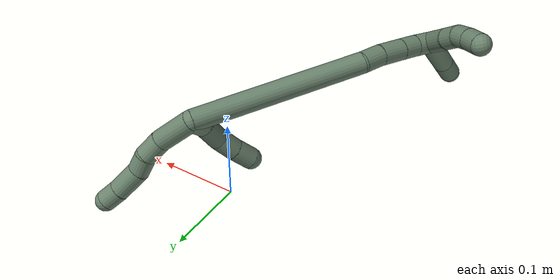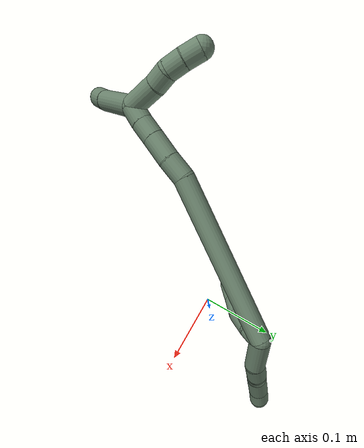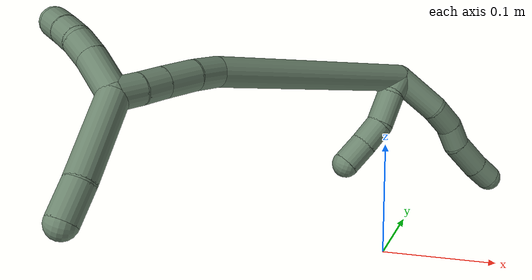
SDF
<sdf version="1.7">
 <world name="default">
  <model name="17">
   <static>0</static>
   <link name="17">
    <collision name="collision-cylinder-e_1_2_8">
     <pose>-0.008554 0.001187 -0.02164 -3.08679 -0.375912 2.85535</pose>
     <geometry><cylinder><radius>0.0125</radius><length>0.046599</length></cylinder></geometry>
     <surface>
      <friction><ode><mu>1.16</mu><mu2>1.16</mu2><slip1>0</slip1><slip2>0</slip2></ode></friction>
      <contact><ode><kp>1e+06</kp><kd>1</kd><max_vel>0</max_vel><min_depth>0.001</min_depth></ode></contact>
     </surface>
    </collision>
    <visual name="visual-cylinder-e_1_2_8">
     <pose>-0.008554 0.001187 -0.02164 -3.08679 -0.375912 2.85535</pose>
     <geometry><cylinder><radius>0.0125</radius><length>0.046599</length></cylinder></geometry>
     <material><ambient>0.415686 0.509804 0.423529 1</ambient></material>
    </visual>
    <collision name="collision-cylinder-e_2_8_9">
     <pose>-0.023001 0.005935 -0.054169 -2.82557 -0.475154 1.97759</pose>
     <geometry><cylinder><radius>0.0125</radius><length>0.025767</length></cylinder></geometry>
     <surface>
      <friction><ode><mu>1.16</mu><mu2>1.16</mu2><slip1>0</slip1><slip2>0</slip2></ode></friction>
      <contact><ode><kp>1e+06</kp><kd>1</kd><max_vel>0</max_vel><min_depth>0.001</min_depth></ode></contact>
     </surface>
    </collision>
    <visual name="visual-cylinder-e_2_8_9">
     <pose>-0.023001 0.005935 -0.054169 -2.82557 -0.475154 1.97759</pose>
     <geometry><cylinder><radius>0.0125</radius><length>0.025767</length></cylinder></geometry>
     <material><ambient>0.415686 0.509804 0.423529 1</ambient></material>
    </visual>
    <collision name="collision-cylinder-e_3_9_10">
     <pose>-0.036669 0.011618 -0.072548 -2.86543 -0.78463 2.49354</pose>
     <geometry><cylinder><radius>0.0125</radius><length>0.022003</length></cylinder></geometry>
     <surface>
      <friction><ode><mu>1.16</mu><mu2>1.16</mu2><slip1>0</slip1><slip2>0</slip2></ode></friction>
      <contact><ode><kp>1e+06</kp><kd>1</kd><max_vel>0</max_vel><min_depth>0.001</min_depth></ode></contact>
     </surface>
    </collision>
    <visual name="visual-cylinder-e_3_9_10">
     <pose>-0.036669 0.011618 -0.072548 -2.86543 -0.78463 2.49354</pose>
     <geometry><cylinder><radius>0.0125</radius><length>0.022003</length></cylinder></geometry>
     <material><ambient>0.415686 0.509804 0.423529 1</ambient></material>
    </visual>
    <collision name="collision-cylinder-e_4_10_11">
     <pose>-0.052194 0.01821 -0.094663 -2.84504 -0.469169 2.02434</pose>
     <geometry><cylinder><radius>0.0125</radius><length>0.03429</length></cylinder></geometry>
     <surface>
      <friction><ode><mu>1.16</mu><mu2>1.16</mu2><slip1>0</slip1><slip2>0</slip2></ode></friction>
      <contact><ode><kp>1e+06</kp><kd>1</kd><max_vel>0</max_vel><min_depth>0.001</min_depth></ode></contact>
     </surface>
    </collision>
    <visual name="visual-cylinder-e_4_10_11">
     <pose>-0.052194 0.01821 -0.094663 -2.84504 -0.469169 2.02434</pose>
     <geometry><cylinder><radius>0.0125</radius><length>0.03429</length></cylinder></geometry>
     <material><ambient>0.415686 0.509804 0.423529 1</ambient></material>
    </visual>
    <collision name="collision-cylinder-e_5_11_6">
     <pose>-0.063901 0.025196 -0.118874 -2.88475 -0.379714 1.95827</pose>
     <geometry><cylinder><radius>0.0125</radius><length>0.021341</length></cylinder></geometry>
     <surface>
      <friction><ode><mu>1.16</mu><mu2>1.16</mu2><slip1>0</slip1><slip2>0</slip2></ode></friction>
      <contact><ode><kp>1e+06</kp><kd>1</kd><max_vel>0</max_vel><min_depth>0.001</min_depth></ode></contact>
     </surface>
    </collision>
    <visual name="visual-cylinder-e_5_11_6">
     <pose>-0.063901 0.025196 -0.118874 -2.88475 -0.379714 1.95827</pose>
     <geometry><cylinder><radius>0.0125</radius><length>0.021341</length></cylinder></geometry>
     <material><ambient>0.415686 0.509804 0.423529 1</ambient></material>
    </visual>
    <collision name="collision-cylinder-e_1_2_12">
     <pose>-0.008466 -0.005556 0.002483 1.15055 -0.947499 -0.641907</pose>
     <geometry><cylinder><radius>0.0125</radius><length>0.020853</length></cylinder></geometry>
     <surface>
      <friction><ode><mu>1.16</mu><mu2>1.16</mu2><slip1>0</slip1><slip2>0</slip2></ode></friction>
      <contact><ode><kp>1e+06</kp><kd>1</kd><max_vel>0</max_vel><min_depth>0.001</min_depth></ode></contact>
     </surface>
    </collision>
    <visual name="visual-cylinder-e_1_2_12">
     <pose>-0.008466 -0.005556 0.002483 1.15055 -0.947499 -0.641907</pose>
     <geometry><cylinder><radius>0.0125</radius><length>0.020853</length></cylinder></geometry>
     <material><ambient>0.415686 0.509804 0.423529 1</ambient></material>
    </visual>
    <collision name="collision-cylinder-e_2_12_13">
     <pose>-0.031204 -0.016121 0.006662 1.24423 -1.21603 -0.925828</pose>
     <geometry><cylinder><radius>0.0125</radius><length>0.030441</length></cylinder></geometry>
     <surface>
      <friction><ode><mu>1.16</mu><mu2>1.16</mu2><slip1>0</slip1><slip2>0</slip2></ode></friction>
      <contact><ode><kp>1e+06</kp><kd>1</kd><max_vel>0</max_vel><min_depth>0.001</min_depth></ode></contact>
     </surface>
    </collision>
    <visual name="visual-cylinder-e_2_12_13">
     <pose>-0.031204 -0.016121 0.006662 1.24423 -1.21603 -0.925828</pose>
     <geometry><cylinder><radius>0.0125</radius><length>0.030441</length></cylinder></geometry>
     <material><ambient>0.415686 0.509804 0.423529 1</ambient></material>
    </visual>
    <collision name="collision-cylinder-e_3_13_14">
     <pose>-0.056147 -0.023427 0.013058 0.454907 -1.11488 -0.286599</pose>
     <geometry><cylinder><radius>0.0125</radius><length>0.023767</length></cylinder></geometry>
     <surface>
      <friction><ode><mu>1.16</mu><mu2>1.16</mu2><slip1>0</slip1><slip2>0</slip2></ode></friction>
      <contact><ode><kp>1e+06</kp><kd>1</kd><max_vel>0</max_vel><min_depth>0.001</min_depth></ode></contact>
     </surface>
    </collision>
    <visual name="visual-cylinder-e_3_13_14">
     <pose>-0.056147 -0.023427 0.013058 0.454907 -1.11488 -0.286599</pose>
     <geometry><cylinder><radius>0.0125</radius><length>0.023767</length></cylinder></geometry>
     <material><ambient>0.415686 0.509804 0.423529 1</ambient></material>
    </visual>
    <collision name="collision-cylinder-e_4_14_5">
     <pose>-0.077564 -0.028749 0.023312 0.498454 -1.03901 -0.289092</pose>
     <geometry><cylinder><radius>0.0125</radius><length>0.02494</length></cylinder></geometry>
     <surface>
      <friction><ode><mu>1.16</mu><mu2>1.16</mu2><slip1>0</slip1><slip2>0</slip2></ode></friction>
      <contact><ode><kp>1e+06</kp><kd>1</kd><max_vel>0</max_vel><min_depth>0.001</min_depth></ode></contact>
     </surface>
    </collision>
    <visual name="visual-cylinder-e_4_14_5">
     <pose>-0.077564 -0.028749 0.023312 0.498454 -1.03901 -0.289092</pose>
     <geometry><cylinder><radius>0.0125</radius><length>0.02494</length></cylinder></geometry>
     <material><ambient>0.415686 0.509804 0.423529 1</ambient></material>
    </visual>
    <collision name="collision-cylinder-e_1_2_15">
     <pose>-0.018495 -0.052176 0.084193 0.554794 -0.184595 -0.052699</pose>
     <geometry><cylinder><radius>0.0125</radius><length>0.201524</length></cylinder></geometry>
     <surface>
      <friction><ode><mu>1.16</mu><mu2>1.16</mu2><slip1>0</slip1><slip2>0</slip2></ode></friction>
      <contact><ode><kp>1e+06</kp><kd>1</kd><max_vel>0</max_vel><min_depth>0.001</min_depth></ode></contact>
     </surface>
    </collision>
    <visual name="visual-cylinder-e_1_2_15">
     <pose>-0.018495 -0.052176 0.084193 0.554794 -0.184595 -0.052699</pose>
     <geometry><cylinder><radius>0.0125</radius><length>0.201524</length></cylinder></geometry>
     <material><ambient>0.415686 0.509804 0.423529 1</ambient></material>
    </visual>
    <collision name="collision-cylinder-e_2_15_16">
     <pose>-0.040258 -0.113407 0.176983 0.811345 -0.256066 -0.110472</pose>
     <geometry><cylinder><radius>0.0125</radius><length>0.025811</length></cylinder></geometry>
     <surface>
      <friction><ode><mu>1.16</mu><mu2>1.16</mu2><slip1>0</slip1><slip2>0</slip2></ode></friction>
      <contact><ode><kp>1e+06</kp><kd>1</kd><max_vel>0</max_vel><min_depth>0.001</min_depth></ode></contact>
     </surface>
    </collision>
    <visual name="visual-cylinder-e_2_15_16">
     <pose>-0.040258 -0.113407 0.176983 0.811345 -0.256066 -0.110472</pose>
     <geometry><cylinder><radius>0.0125</radius><length>0.025811</length></cylinder></geometry>
     <material><ambient>0.415686 0.509804 0.423529 1</ambient></material>
    </visual>
    <collision name="collision-cylinder-e_3_16_17">
     <pose>-0.048665 -0.132164 0.195797 0.759533 -0.349663 -0.140772</pose>
     <geometry><cylinder><radius>0.0125</radius><length>0.029998</length></cylinder></geometry>
     <surface>
      <friction><ode><mu>1.16</mu><mu2>1.16</mu2><slip1>0</slip1><slip2>0</slip2></ode></friction>
      <contact><ode><kp>1e+06</kp><kd>1</kd><max_vel>0</max_vel><min_depth>0.001</min_depth></ode></contact>
     </surface>
    </collision>
    <visual name="visual-cylinder-e_3_16_17">
     <pose>-0.048665 -0.132164 0.195797 0.759533 -0.349663 -0.140772</pose>
     <geometry><cylinder><radius>0.0125</radius><length>0.029998</length></cylinder></geometry>
     <material><ambient>0.415686 0.509804 0.423529 1</ambient></material>
    </visual>
    <collision name="collision-cylinder-e_4_17_18">
     <pose>-0.057608 -0.148835 0.213089 0.777891 -0.365922 -0.151369</pose>
     <geometry><cylinder><radius>0.0125</radius><length>0.021266</length></cylinder></geometry>
     <surface>
      <friction><ode><mu>1.16</mu><mu2>1.16</mu2><slip1>0</slip1><slip2>0</slip2></ode></friction>
      <contact><ode><kp>1e+06</kp><kd>1</kd><max_vel>0</max_vel><min_depth>0.001</min_depth></ode></contact>
     </surface>
    </collision>
    <visual name="visual-cylinder-e_4_17_18">
     <pose>-0.057608 -0.148835 0.213089 0.777891 -0.365922 -0.151369</pose>
     <geometry><cylinder><radius>0.0125</radius><length>0.021266</length></cylinder></geometry>
     <material><ambient>0.415686 0.509804 0.423529 1</ambient></material>
    </visual>
    <collision name="collision-cylinder-e_5_18_1">
     <pose>-0.065241 -0.162107 0.227915 0.68274 -0.365909 -0.131281</pose>
     <geometry><cylinder><radius>0.0125</radius><length>0.021402</length></cylinder></geometry>
     <surface>
      <friction><ode><mu>1.16</mu><mu2>1.16</mu2><slip1>0</slip1><slip2>0</slip2></ode></friction>
      <contact><ode><kp>1e+06</kp><kd>1</kd><max_vel>0</max_vel><min_depth>0.001</min_depth></ode></contact>
     </surface>
    </collision>
    <visual name="visual-cylinder-e_5_18_1">
     <pose>-0.065241 -0.162107 0.227915 0.68274 -0.365909 -0.131281</pose>
     <geometry><cylinder><radius>0.0125</radius><length>0.021402</length></cylinder></geometry>
     <material><ambient>0.415686 0.509804 0.423529 1</ambient></material>
    </visual>
    <collision name="collision-cylinder-e_1_1_19">
     <pose>-0.097897 -0.188096 0.236959 1.50526 -0.970676 -0.917571</pose>
     <geometry><cylinder><radius>0.0125</radius><length>0.069862</length></cylinder></geometry>
     <surface>
      <friction><ode><mu>1.16</mu><mu2>1.16</mu2><slip1>0</slip1><slip2>0</slip2></ode></friction>
      <contact><ode><kp>1e+06</kp><kd>1</kd><max_vel>0</max_vel><min_depth>0.001</min_depth></ode></contact>
     </surface>
    </collision>
    <visual name="visual-cylinder-e_1_1_19">
     <pose>-0.097897 -0.188096 0.236959 1.50526 -0.970676 -0.917571</pose>
     <geometry><cylinder><radius>0.0125</radius><length>0.069862</length></cylinder></geometry>
     <material><ambient>0.415686 0.509804 0.423529 1</ambient></material>
    </visual>
    <collision name="collision-cylinder-e_2_19_4">
     <pose>-0.14005 -0.214685 0.239605 1.37709 -1.08501 -0.921004</pose>
     <geometry><cylinder><radius>0.0125</radius><length>0.030138</length></cylinder></geometry>
     <surface>
      <friction><ode><mu>1.16</mu><mu2>1.16</mu2><slip1>0</slip1><slip2>0</slip2></ode></friction>
      <contact><ode><kp>1e+06</kp><kd>1</kd><max_vel>0</max_vel><min_depth>0.001</min_depth></ode></contact>
     </surface>
    </collision>
    <visual name="visual-cylinder-e_2_19_4">
     <pose>-0.14005 -0.214685 0.239605 1.37709 -1.08501 -0.921004</pose>
     <geometry><cylinder><radius>0.0125</radius><length>0.030138</length></cylinder></geometry>
     <material><ambient>0.415686 0.509804 0.423529 1</ambient></material>
    </visual>
    <collision name="collision-cylinder-e_1_1_20">
     <pose>-0.060569 -0.155634 0.247786 -0.81189 0.44974 -0.196003</pose>
     <geometry><cylinder><radius>0.0125</radius><length>0.03911</length></cylinder></geometry>
     <surface>
      <friction><ode><mu>1.16</mu><mu2>1.16</mu2><slip1>0</slip1><slip2>0</slip2></ode></friction>
      <contact><ode><kp>1e+06</kp><kd>1</kd><max_vel>0</max_vel><min_depth>0.001</min_depth></ode></contact>
     </surface>
    </collision>
    <visual name="visual-cylinder-e_1_1_20">
     <pose>-0.060569 -0.155634 0.247786 -0.81189 0.44974 -0.196003</pose>
     <geometry><cylinder><radius>0.0125</radius><length>0.03911</length></cylinder></geometry>
     <material><ambient>0.415686 0.509804 0.423529 1</ambient></material>
    </visual>
    <collision name="collision-cylinder-e_2_20_21">
     <pose>-0.048034 -0.13718 0.267098 -0.667975 0.414707 -0.145738</pose>
     <geometry><cylinder><radius>0.0125</radius><length>0.020024</length></cylinder></geometry>
     <surface>
      <friction><ode><mu>1.16</mu><mu2>1.16</mu2><slip1>0</slip1><slip2>0</slip2></ode></friction>
      <contact><ode><kp>1e+06</kp><kd>1</kd><max_vel>0</max_vel><min_depth>0.001</min_depth></ode></contact>
     </surface>
    </collision>
    <visual name="visual-cylinder-e_2_20_21">
     <pose>-0.048034 -0.13718 0.267098 -0.667975 0.414707 -0.145738</pose>
     <geometry><cylinder><radius>0.0125</radius><length>0.020024</length></cylinder></geometry>
     <material><ambient>0.415686 0.509804 0.423529 1</ambient></material>
    </visual>
    <collision name="collision-cylinder-e_3_21_22">
     <pose>-0.042411 -0.123711 0.280457 -0.901469 0.158492 -0.076827</pose>
     <geometry><cylinder><radius>0.0125</radius><length>0.020127</length></cylinder></geometry>
     <surface>
      <friction><ode><mu>1.16</mu><mu2>1.16</mu2><slip1>0</slip1><slip2>0</slip2></ode></friction>
      <contact><ode><kp>1e+06</kp><kd>1</kd><max_vel>0</max_vel><min_depth>0.001</min_depth></ode></contact>
     </surface>
    </collision>
    <visual name="visual-cylinder-e_3_21_22">
     <pose>-0.042411 -0.123711 0.280457 -0.901469 0.158492 -0.076827</pose>
     <geometry><cylinder><radius>0.0125</radius><length>0.020127</length></cylinder></geometry>
     <material><ambient>0.415686 0.509804 0.423529 1</ambient></material>
    </visual>
    <collision name="collision-cylinder-e_4_22_3">
     <pose>-0.039841 -0.107411 0.29247 -0.968623 0.094805 -0.049904</pose>
     <geometry><cylinder><radius>0.0125</radius><length>0.020739</length></cylinder></geometry>
     <surface>
      <friction><ode><mu>1.16</mu><mu2>1.16</mu2><slip1>0</slip1><slip2>0</slip2></ode></friction>
      <contact><ode><kp>1e+06</kp><kd>1</kd><max_vel>0</max_vel><min_depth>0.001</min_depth></ode></contact>
     </surface>
    </collision>
    <visual name="visual-cylinder-e_4_22_3">
     <pose>-0.039841 -0.107411 0.29247 -0.968623 0.094805 -0.049904</pose>
     <geometry><cylinder><radius>0.0125</radius><length>0.020739</length></cylinder></geometry>
     <material><ambient>0.415686 0.509804 0.423529 1</ambient></material>
    </visual>
    <collision name="collision-sphere-3">
     <pose>-0.03886 -0.098903 0.298318 0 -0 0</pose>
     <geometry><sphere><radius>0.0125</radius></sphere></geometry>
     <surface>
      <friction><ode><mu>1.16</mu><mu2>1.16</mu2><slip1>0</slip1><slip2>0</slip2></ode></friction>
      <contact><ode><kp>1e+06</kp><kd>1</kd><max_vel>0</max_vel><min_depth>0.001</min_depth></ode></contact>
     </surface>
    </collision>
    <visual name="visual-sphere-3">
     <pose>-0.03886 -0.098903 0.298318 0 -0 0</pose>
     <geometry><sphere><radius>0.0125</radius></sphere></geometry>
     <material><ambient>0.415686 0.509804 0.423529 1</ambient></material>
    </visual>
    <collision name="collision-sphere-22">
     <pose>-0.040823 -0.115918 0.286623 0 -0 0</pose>
     <geometry><sphere><radius>0.0125</radius></sphere></geometry>
     <surface>
      <friction><ode><mu>1.16</mu><mu2>1.16</mu2><slip1>0</slip1><slip2>0</slip2></ode></friction>
      <contact><ode><kp>1e+06</kp><kd>1</kd><max_vel>0</max_vel><min_depth>0.001</min_depth></ode></contact>
     </surface>
    </collision>
    <visual name="visual-sphere-22">
     <pose>-0.040823 -0.115918 0.286623 0 -0 0</pose>
     <geometry><sphere><radius>0.0125</radius></sphere></geometry>
     <material><ambient>0.415686 0.509804 0.423529 1</ambient></material>
    </visual>
    <collision name="collision-sphere-21">
     <pose>-0.044 -0.131504 0.274292 0 -0 0</pose>
     <geometry><sphere><radius>0.0125</radius></sphere></geometry>
     <surface>
      <friction><ode><mu>1.16</mu><mu2>1.16</mu2><slip1>0</slip1><slip2>0</slip2></ode></friction>
      <contact><ode><kp>1e+06</kp><kd>1</kd><max_vel>0</max_vel><min_depth>0.001</min_depth></ode></contact>
     </surface>
    </collision>
    <visual name="visual-sphere-21">
     <pose>-0.044 -0.131504 0.274292 0 -0 0</pose>
     <geometry><sphere><radius>0.0125</radius></sphere></geometry>
     <material><ambient>0.415686 0.509804 0.423529 1</ambient></material>
    </visual>
    <collision name="collision-sphere-20">
     <pose>-0.052068 -0.142856 0.259904 0 -0 0</pose>
     <geometry><sphere><radius>0.0125</radius></sphere></geometry>
     <surface>
      <friction><ode><mu>1.16</mu><mu2>1.16</mu2><slip1>0</slip1><slip2>0</slip2></ode></friction>
      <contact><ode><kp>1e+06</kp><kd>1</kd><max_vel>0</max_vel><min_depth>0.001</min_depth></ode></contact>
     </surface>
    </collision>
    <visual name="visual-sphere-20">
     <pose>-0.052068 -0.142856 0.259904 0 -0 0</pose>
     <geometry><sphere><radius>0.0125</radius></sphere></geometry>
     <material><ambient>0.415686 0.509804 0.423529 1</ambient></material>
    </visual>
    <collision name="collision-sphere-4">
     <pose>-0.153376 -0.221589 0.24096 0 -0 0</pose>
     <geometry><sphere><radius>0.0125</radius></sphere></geometry>
     <surface>
      <friction><ode><mu>1.16</mu><mu2>1.16</mu2><slip1>0</slip1><slip2>0</slip2></ode></friction>
      <contact><ode><kp>1e+06</kp><kd>1</kd><max_vel>0</max_vel><min_depth>0.001</min_depth></ode></contact>
     </surface>
    </collision>
    <visual name="visual-sphere-4">
     <pose>-0.153376 -0.221589 0.24096 0 -0 0</pose>
     <geometry><sphere><radius>0.0125</radius></sphere></geometry>
     <material><ambient>0.415686 0.509804 0.423529 1</ambient></material>
    </visual>
    <collision name="collision-sphere-6">
     <pose>-0.067856 0.027714 -0.128459 0 -0 0</pose>
     <geometry><sphere><radius>0.0125</radius></sphere></geometry>
     <surface>
      <friction><ode><mu>1.16</mu><mu2>1.16</mu2><slip1>0</slip1><slip2>0</slip2></ode></friction>
      <contact><ode><kp>1e+06</kp><kd>1</kd><max_vel>0</max_vel><min_depth>0.001</min_depth></ode></contact>
     </surface>
    </collision>
    <visual name="visual-sphere-6">
     <pose>-0.067856 0.027714 -0.128459 0 -0 0</pose>
     <geometry><sphere><radius>0.0125</radius></sphere></geometry>
     <material><ambient>0.415686 0.509804 0.423529 1</ambient></material>
    </visual>
    <collision name="collision-sphere-11">
     <pose>-0.059946 0.022679 -0.109288 0 -0 0</pose>
     <geometry><sphere><radius>0.0125</radius></sphere></geometry>
     <surface>
      <friction><ode><mu>1.16</mu><mu2>1.16</mu2><slip1>0</slip1><slip2>0</slip2></ode></friction>
      <contact><ode><kp>1e+06</kp><kd>1</kd><max_vel>0</max_vel><min_depth>0.001</min_depth></ode></contact>
     </surface>
    </collision>
    <visual name="visual-sphere-11">
     <pose>-0.059946 0.022679 -0.109288 0 -0 0</pose>
     <geometry><sphere><radius>0.0125</radius></sphere></geometry>
     <material><ambient>0.415686 0.509804 0.423529 1</ambient></material>
    </visual>
    <collision name="collision-sphere-10">
     <pose>-0.044442 0.013741 -0.080038 0 -0 0</pose>
     <geometry><sphere><radius>0.0125</radius></sphere></geometry>
     <surface>
      <friction><ode><mu>1.16</mu><mu2>1.16</mu2><slip1>0</slip1><slip2>0</slip2></ode></friction>
      <contact><ode><kp>1e+06</kp><kd>1</kd><max_vel>0</max_vel><min_depth>0.001</min_depth></ode></contact>
     </surface>
    </collision>
    <visual name="visual-sphere-10">
     <pose>-0.044442 0.013741 -0.080038 0 -0 0</pose>
     <geometry><sphere><radius>0.0125</radius></sphere></geometry>
     <material><ambient>0.415686 0.509804 0.423529 1</ambient></material>
    </visual>
    <collision name="collision-sphere-9">
     <pose>-0.028895 0.009496 -0.065058 0 -0 0</pose>
     <geometry><sphere><radius>0.0125</radius></sphere></geometry>
     <surface>
      <friction><ode><mu>1.16</mu><mu2>1.16</mu2><slip1>0</slip1><slip2>0</slip2></ode></friction>
      <contact><ode><kp>1e+06</kp><kd>1</kd><max_vel>0</max_vel><min_depth>0.001</min_depth></ode></contact>
     </surface>
    </collision>
    <visual name="visual-sphere-9">
     <pose>-0.028895 0.009496 -0.065058 0 -0 0</pose>
     <geometry><sphere><radius>0.0125</radius></sphere></geometry>
     <material><ambient>0.415686 0.509804 0.423529 1</ambient></material>
    </visual>
    <collision name="collision-sphere-2">
     <geometry><sphere><radius>0.0125</radius></sphere></geometry>
     <surface>
      <friction><ode><mu>1.16</mu><mu2>1.16</mu2><slip1>0</slip1><slip2>0</slip2></ode></friction>
      <contact><ode><kp>1e+06</kp><kd>1</kd><max_vel>0</max_vel><min_depth>0.001</min_depth></ode></contact>
     </surface>
    </collision>
    <visual name="visual-sphere-2">
     <geometry><sphere><radius>0.0125</radius></sphere></geometry>
     <material><ambient>0.415686 0.509804 0.423529 1</ambient></material>
    </visual>
    <collision name="collision-sphere-19">
     <pose>-0.126725 -0.207781 0.238251 0 -0 0</pose>
     <geometry><sphere><radius>0.0125</radius></sphere></geometry>
     <surface>
      <friction><ode><mu>1.16</mu><mu2>1.16</mu2><slip1>0</slip1><slip2>0</slip2></ode></friction>
      <contact><ode><kp>1e+06</kp><kd>1</kd><max_vel>0</max_vel><min_depth>0.001</min_depth></ode></contact>
     </surface>
    </collision>
    <visual name="visual-sphere-19">
     <pose>-0.126725 -0.207781 0.238251 0 -0 0</pose>
     <geometry><sphere><radius>0.0125</radius></sphere></geometry>
     <material><ambient>0.415686 0.509804 0.423529 1</ambient></material>
    </visual>
    <collision name="collision-sphere-8">
     <pose>-0.017107 0.002374 -0.04328 0 -0 0</pose>
     <geometry><sphere><radius>0.0125</radius></sphere></geometry>
     <surface>
      <friction><ode><mu>1.16</mu><mu2>1.16</mu2><slip1>0</slip1><slip2>0</slip2></ode></friction>
      <contact><ode><kp>1e+06</kp><kd>1</kd><max_vel>0</max_vel><min_depth>0.001</min_depth></ode></contact>
     </surface>
    </collision>
    <visual name="visual-sphere-8">
     <pose>-0.017107 0.002374 -0.04328 0 -0 0</pose>
     <geometry><sphere><radius>0.0125</radius></sphere></geometry>
     <material><ambient>0.415686 0.509804 0.423529 1</ambient></material>
    </visual>
    <collision name="collision-sphere-12">
     <pose>-0.016932 -0.011113 0.004966 0 -0 0</pose>
     <geometry><sphere><radius>0.0125</radius></sphere></geometry>
     <surface>
      <friction><ode><mu>1.16</mu><mu2>1.16</mu2><slip1>0</slip1><slip2>0</slip2></ode></friction>
      <contact><ode><kp>1e+06</kp><kd>1</kd><max_vel>0</max_vel><min_depth>0.001</min_depth></ode></contact>
     </surface>
    </collision>
    <visual name="visual-sphere-12">
     <pose>-0.016932 -0.011113 0.004966 0 -0 0</pose>
     <geometry><sphere><radius>0.0125</radius></sphere></geometry>
     <material><ambient>0.415686 0.509804 0.423529 1</ambient></material>
    </visual>
    <collision name="collision-sphere-13">
     <pose>-0.045477 -0.021128 0.008358 0 -0 0</pose>
     <geometry><sphere><radius>0.0125</radius></sphere></geometry>
     <surface>
      <friction><ode><mu>1.16</mu><mu2>1.16</mu2><slip1>0</slip1><slip2>0</slip2></ode></friction>
      <contact><ode><kp>1e+06</kp><kd>1</kd><max_vel>0</max_vel><min_depth>0.001</min_depth></ode></contact>
     </surface>
    </collision>
    <visual name="visual-sphere-13">
     <pose>-0.045477 -0.021128 0.008358 0 -0 0</pose>
     <geometry><sphere><radius>0.0125</radius></sphere></geometry>
     <material><ambient>0.415686 0.509804 0.423529 1</ambient></material>
    </visual>
    <collision name="collision-sphere-14">
     <pose>-0.066816 -0.025726 0.017758 0 -0 0</pose>
     <geometry><sphere><radius>0.0125</radius></sphere></geometry>
     <surface>
      <friction><ode><mu>1.16</mu><mu2>1.16</mu2><slip1>0</slip1><slip2>0</slip2></ode></friction>
      <contact><ode><kp>1e+06</kp><kd>1</kd><max_vel>0</max_vel><min_depth>0.001</min_depth></ode></contact>
     </surface>
    </collision>
    <visual name="visual-sphere-14">
     <pose>-0.066816 -0.025726 0.017758 0 -0 0</pose>
     <geometry><sphere><radius>0.0125</radius></sphere></geometry>
     <material><ambient>0.415686 0.509804 0.423529 1</ambient></material>
    </visual>
    <collision name="collision-sphere-5">
     <pose>-0.088312 -0.031772 0.028866 0 -0 0</pose>
     <geometry><sphere><radius>0.0125</radius></sphere></geometry>
     <surface>
      <friction><ode><mu>1.16</mu><mu2>1.16</mu2><slip1>0</slip1><slip2>0</slip2></ode></friction>
      <contact><ode><kp>1e+06</kp><kd>1</kd><max_vel>0</max_vel><min_depth>0.001</min_depth></ode></contact>
     </surface>
    </collision>
    <visual name="visual-sphere-5">
     <pose>-0.088312 -0.031772 0.028866 0 -0 0</pose>
     <geometry><sphere><radius>0.0125</radius></sphere></geometry>
     <material><ambient>0.415686 0.509804 0.423529 1</ambient></material>
    </visual>
    <collision name="collision-sphere-15">
     <pose>-0.036989 -0.104353 0.168387 0 -0 0</pose>
     <geometry><sphere><radius>0.0125</radius></sphere></geometry>
     <surface>
      <friction><ode><mu>1.16</mu><mu2>1.16</mu2><slip1>0</slip1><slip2>0</slip2></ode></friction>
      <contact><ode><kp>1e+06</kp><kd>1</kd><max_vel>0</max_vel><min_depth>0.001</min_depth></ode></contact>
     </surface>
    </collision>
    <visual name="visual-sphere-15">
     <pose>-0.036989 -0.104353 0.168387 0 -0 0</pose>
     <geometry><sphere><radius>0.0125</radius></sphere></geometry>
     <material><ambient>0.415686 0.509804 0.423529 1</ambient></material>
    </visual>
    <collision name="collision-sphere-16">
     <pose>-0.043527 -0.122461 0.185579 0 -0 0</pose>
     <geometry><sphere><radius>0.0125</radius></sphere></geometry>
     <surface>
      <friction><ode><mu>1.16</mu><mu2>1.16</mu2><slip1>0</slip1><slip2>0</slip2></ode></friction>
      <contact><ode><kp>1e+06</kp><kd>1</kd><max_vel>0</max_vel><min_depth>0.001</min_depth></ode></contact>
     </surface>
    </collision>
    <visual name="visual-sphere-16">
     <pose>-0.043527 -0.122461 0.185579 0 -0 0</pose>
     <geometry><sphere><radius>0.0125</radius></sphere></geometry>
     <material><ambient>0.415686 0.509804 0.423529 1</ambient></material>
    </visual>
    <collision name="collision-sphere-17">
     <pose>-0.053803 -0.141867 0.206016 0 -0 0</pose>
     <geometry><sphere><radius>0.0125</radius></sphere></geometry>
     <surface>
      <friction><ode><mu>1.16</mu><mu2>1.16</mu2><slip1>0</slip1><slip2>0</slip2></ode></friction>
      <contact><ode><kp>1e+06</kp><kd>1</kd><max_vel>0</max_vel><min_depth>0.001</min_depth></ode></contact>
     </surface>
    </collision>
    <visual name="visual-sphere-17">
     <pose>-0.053803 -0.141867 0.206016 0 -0 0</pose>
     <geometry><sphere><radius>0.0125</radius></sphere></geometry>
     <material><ambient>0.415686 0.509804 0.423529 1</ambient></material>
    </visual>
    <collision name="collision-sphere-18">
     <pose>-0.061413 -0.155803 0.220162 0 -0 0</pose>
     <geometry><sphere><radius>0.0125</radius></sphere></geometry>
     <surface>
      <friction><ode><mu>1.16</mu><mu2>1.16</mu2><slip1>0</slip1><slip2>0</slip2></ode></friction>
      <contact><ode><kp>1e+06</kp><kd>1</kd><max_vel>0</max_vel><min_depth>0.001</min_depth></ode></contact>
     </surface>
    </collision>
    <visual name="visual-sphere-18">
     <pose>-0.061413 -0.155803 0.220162 0 -0 0</pose>
     <geometry><sphere><radius>0.0125</radius></sphere></geometry>
     <material><ambient>0.415686 0.509804 0.423529 1</ambient></material>
    </visual>
    <collision name="collision-sphere-1">
     <pose>-0.06907 -0.168412 0.235667 0 -0 0</pose>
     <geometry><sphere><radius>0.0125</radius></sphere></geometry>
     <surface>
      <friction><ode><mu>1.16</mu><mu2>1.16</mu2><slip1>0</slip1><slip2>0</slip2></ode></friction>
      <contact><ode><kp>1e+06</kp><kd>1</kd><max_vel>0</max_vel><min_depth>0.001</min_depth></ode></contact>
     </surface>
    </collision>
    <visual name="visual-sphere-1">
     <pose>-0.06907 -0.168412 0.235667 0 -0 0</pose>
     <geometry><sphere><radius>0.0125</radius></sphere></geometry>
     <material><ambient>0.415686 0.509804 0.423529 1</ambient></material>
    </visual>
    <inertial>
     <pose>-0.045687 -0.07661 0.104941 0 -0 0</pose>
     <mass>0.75</mass>
     <inertia>
      <ixx>0.000631</ixx>
      <ixy>0</ixy>
      <ixz>0</ixz>
      <iyy>0.000595</iyy>
      <iyz>0</iyz>
      <izz>0.000562</izz>
     </inertia>
    </inertial>
   </link>
   <pose>-0.001757 0.063562 0.150519 -0.118695 -1.24426 0.529786</pose>
  </model>
 </world>
</sdf>
